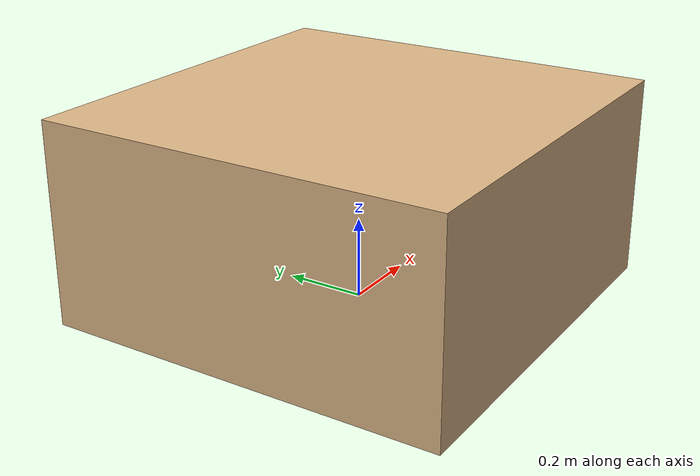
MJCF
<mujoco model="stairs">
    <asset>
        <material name="box_material" shininess="0.1" specular="0.5" roughness="0.3" />
    </asset>

    <worldbody>
        <body name="box" pos="0 0 0.25">
          <geom type="box" contype="4" conaffinity="1" size="0.5 0.5 0.25" friction="0.5" material="box_material" rgba="0.87 0.72 0.53 1.0"/>
        </body>
    </worldbody>
</mujoco>
